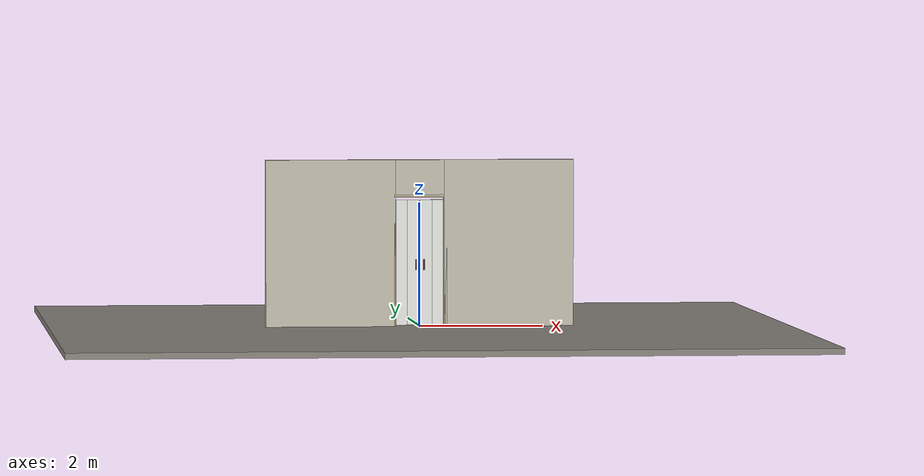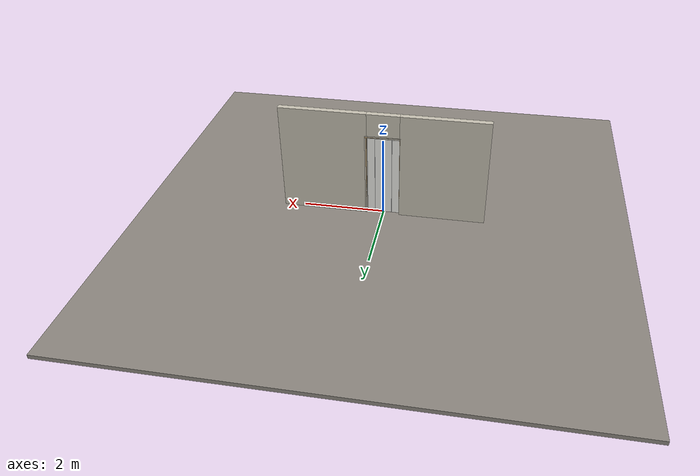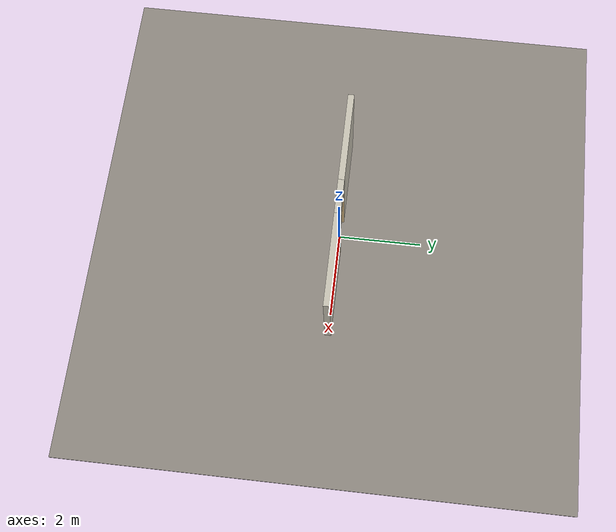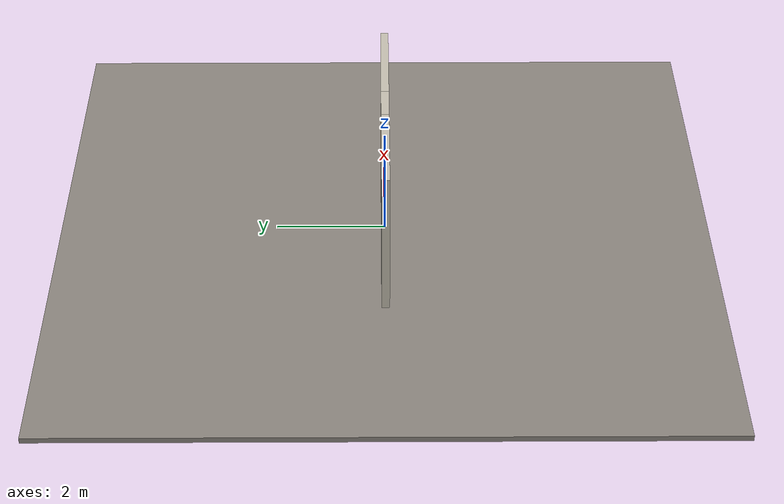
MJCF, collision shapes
<?xml version="1.0" ?>
<mujoco model="db0541_bifold_minimal">
  <compiler angle="radian" meshdir="../../hardware" texturedir="../../textures" autolimits="true" inertiafromgeom="false"/>
  <option timestep="0.002" integrator="implicitfast" cone="elliptic" impratio="10" noslip_iterations="3">
    <flag multiccd="enable"/>
  </option>
  <size memory="16M"/>
  <default>
    <geom condim="4" solref="0.005 1" solimp="0.95 0.99 0.001"/>
    <joint solreflimit="0.005 1" solimplimit="0.95 0.99 0.001"/>
    <tendon solreflimit="0.005 1"/>
    <equality solref="0.002 1"/>
  </default>
  <visual>
    <headlight ambient="0.4 0.4 0.4" diffuse="0.7 0.7 0.7" specular="0.2 0.2 0.2"/>
    <quality shadowsize="4096"/>
    <map znear="0.01" zfar="60"/>
  </visual>
  <asset>
    <mesh name="pull_1e5d69a91a" file="pull_1e5d69a91a.obj"/>
    <material name="mat_floor" rgba="0.55 0.53 0.5 1" specular="0.2" shininess="0.15" reflectance="0"/>
    <material name="mat_wall" rgba="0.78 0.76 0.7 1" specular="0.2" shininess="0.1" reflectance="0"/>
    <material name="mat_frame" rgba="0.82 0.7 0.5 1" specular="0.2" shininess="0.45" reflectance="0"/>
    <material name="mat_track" rgba="0.8 0.81 0.83 1" specular="0.8" shininess="0.6" reflectance="0.4"/>
    <material name="mat_hinge" rgba="0.65 0.66 0.68 1" specular="0.74" shininess="0.5" reflectance="0.36"/>
    <material name="mat_panel_0_0" rgba="0.93 0.93 0.91 1" specular="0.2" shininess="0.53" reflectance="0"/>
    <material name="mat_panel_0_0_louver" rgba="0.79 0.79 0.773 1" specular="0.2" shininess="0.4" reflectance="0"/>
    <material name="mat_panel_0_1" rgba="0.93 0.93 0.91 1" specular="0.2" shininess="0.53" reflectance="0"/>
    <material name="mat_panel_0_1_louver" rgba="0.79 0.79 0.773 1" specular="0.2" shininess="0.4" reflectance="0"/>
    <material name="mat_op_stainless" rgba="0.75 0.76 0.77 1" specular="0.8" shininess="0.65" reflectance="0.4"/>
    <material name="mat_panel_1_0" rgba="0.93 0.93 0.91 1" specular="0.2" shininess="0.53" reflectance="0"/>
    <material name="mat_panel_1_0_louver" rgba="0.79 0.79 0.773 1" specular="0.2" shininess="0.4" reflectance="0"/>
    <material name="mat_panel_1_1" rgba="0.93 0.93 0.91 1" specular="0.2" shininess="0.53" reflectance="0"/>
    <material name="mat_panel_1_1_louver" rgba="0.79 0.79 0.773 1" specular="0.2" shininess="0.4" reflectance="0"/>
    <texture name="skybox" type="skybox" builtin="gradient" rgb1="0.6 0.7 0.85" rgb2="0.9 0.92 0.95" width="256" height="256"/>
  </asset>
  <worldbody>
    <light name="sun" pos="1.5 -2.5 4" dir="-0.3 0.5 -0.8" directional="true" diffuse="0.8 0.8 0.8" specular="0.3 0.3 0.3" castshadow="true"/>
    <light name="fill" pos="-1.5 2.5 3" dir="0.3 -0.5 -0.7" directional="true" diffuse="0.35 0.35 0.4" castshadow="false"/>
    <camera name="robot_view" pos="0 -2.581563 1.766338" xyaxes="1 0 0 0 0.26963 0.962964" fovy="52"/>
    <camera name="far_view" pos="0 2.581563 1.766338" xyaxes="-1 0 0 0 -0.26963 0.962964" fovy="52"/>
    <camera name="iso" pos="1.961988 -2.168513 2.179388" xyaxes="0.741536 0.670913 0 -0.242917 0.268487 0.932151" fovy="46"/>
    <camera name="detail_handle" pos="0.114028 -0.8775 1.28" xyaxes="0.97561 0.219512 0 -0.070934 0.315262 0.94635" fovy="38"/>
    <geom name="floor" type="box" size="6 6 0.05" pos="0 0 -0.05" material="mat_floor" group="0" contype="1" conaffinity="1" friction="0.8 0.005 0.0001" density="2400"/>
    <geom name="wall_left" type="box" size="1.05275 0.0725 1.35" pos="-1.44725 0 1.35" material="mat_wall" group="0" contype="1" conaffinity="1" friction="0.6 0.005 0.0001" density="800"/>
    <geom name="wall_right" type="box" size="1.05275 0.0725 1.35" pos="1.44725 0 1.35" material="mat_wall" group="0" contype="1" conaffinity="1" friction="0.6 0.005 0.0001" density="800"/>
    <geom name="wall_header" type="box" size="0.3945 0.0725 0.3065" pos="0 0 2.3935" material="mat_wall" group="0" contype="1" conaffinity="1" friction="0.6 0.005 0.0001" density="800"/>
    <geom name="jamb_hinge" type="box" size="0.0095 0.0725 1.0435" pos="-0.404 0 1.0435" material="mat_frame" group="0" contype="1" conaffinity="1" friction="0.6 0.005 0.0001" density="400"/>
    <geom name="jamb_strike" type="box" size="0.0095 0.0725 1.0435" pos="0.404 0 1.0435" material="mat_frame" group="0" contype="1" conaffinity="1" friction="0.6 0.005 0.0001" density="400"/>
    <geom name="stud_strike" type="box" size="0.015 0.0725 1.0435" pos="0.4285 0 1.0435" material="mat_wall" group="0" contype="1" conaffinity="1" friction="0.6 0.005 0.0001" density="500"/>
    <geom name="jamb_head" type="box" size="0.4285 0.0725 0.0095" pos="0.015 0 2.0965" material="mat_frame" group="0" contype="1" conaffinity="1" friction="0.6 0.005 0.0001" density="400"/>
    <geom name="head_stud" type="box" size="0.4285 0.0725 0.015" pos="0.015 0 2.121" material="mat_wall" group="0" contype="1" conaffinity="1" friction="0.6 0.005 0.0001" density="500"/>
    <site name="approach_point" pos="0 -1.5 0" quat="1 0 0 0" size="0.05" rgba="0.2 0.9 0.2 0.5" group="4"/>
    <site name="goal_point" pos="0 1.5 0" quat="1 0 0 0" size="0.05" rgba="0.2 0.9 0.2 0.5" group="4"/>
    <site name="door_plane_center" pos="0 0 1.0435" quat="1 0 0 0" size="0.02" rgba="0.2 0.9 0.2 0.5" group="4"/>
    <body name="panel_0_0" pos="-0.3945 0 0">
      <inertial pos="0.098355 0 1.036" mass="2.969606" quat="-0.5 0.5 0.5 0.5" diaginertia="0.008258032 1.022101035 1.029752772"/>
      <joint name="panel_0_0_hinge" type="hinge" axis="0 0 -1" pos="0.035 0 0" limited="true" range="0 1.48353" damping="0.666256" frictionloss="1.269555" armature="0.02"/>
      <geom name="panel_0_0_slab" type="box" size="0.089645 0.0175 1.016" pos="0.098355 0 1.036" material="mat_panel_0_0" group="0" contype="1" conaffinity="1" friction="0.35 0.005 0.0001" density="1"/>
      <body name="panel_0_1" pos="0.19 0 0">
        <inertial pos="0.137375 -0.065745 1.001085" mass="3.316026" quat="0.702751 0.06783 -0.704529 0.071966" diaginertia="0.002303017 0.044861166 0.046161179"/>
        <joint name="panel_0_1_hinge" type="hinge" axis="0 0 -1" pos="0 0.0175 0" limited="true" range="-3.141593 0" damping="0.2" frictionloss="0.1" armature="0.005"/>
        <geom name="panel_0_1_slab" type="box" size="0.098264 0.0175 1.016" pos="0.100264 0 1.036" material="mat_panel_0_1" group="0" contype="1" conaffinity="1" friction="0.35 0.005 0.0001" density="1"/>
        <geom name="panel_0_1_pull_n" type="mesh" mesh="pull_1e5d69a91a" pos="0.138528 -0.0175 1" quat="0.707107 0.707107 0 0" material="mat_op_stainless" group="1" contype="0" conaffinity="0" density="3000"/>
        <geom name="panel_0_1_pull_col_n" type="capsule" size="0.0095 0.08" pos="0.138528 -0.0775 1" material="mat_op_stainless" group="3" contype="1" conaffinity="1" rgba="0.8 0.3 0.3 0.25" friction="0.7 0.01 0.0001" density="3000"/>
        <site name="panel_0_1_pull_grip_n" pos="0.138528 -0.0775 1" quat="1 0 0 0" size="0.012" rgba="0.2 0.9 0.2 0.5" group="4"/>
      </body>
    </body>
    <body name="panel_1_0" pos="0.3945 0 0">
      <inertial pos="-0.098355 0 1.036" mass="2.969606" quat="-0.5 0.5 0.5 0.5" diaginertia="0.008258032 1.022101035 1.029752772"/>
      <joint name="panel_1_0_hinge" type="hinge" axis="0 0 1" pos="-0.035 0 0" limited="true" range="0 1.48353" damping="0.666256" frictionloss="1.269555" armature="0.02"/>
      <geom name="panel_1_0_slab" type="box" size="0.089645 0.0175 1.016" pos="-0.098355 0 1.036" material="mat_panel_1_0" group="0" contype="1" conaffinity="1" friction="0.35 0.005 0.0001" density="1"/>
      <body name="panel_1_1" pos="-0.19 0 0">
        <inertial pos="-0.137375 -0.065745 1.001085" mass="3.316026" quat="0.704529 -0.071966 -0.702751 -0.06783" diaginertia="0.002303017 0.044861166 0.046161179"/>
        <joint name="panel_1_1_hinge" type="hinge" axis="0 0 1" pos="0 0.0175 0" limited="true" range="-3.141593 0" damping="0.2" frictionloss="0.1" armature="0.005"/>
        <geom name="panel_1_1_slab" type="box" size="0.098264 0.0175 1.016" pos="-0.100264 0 1.036" material="mat_panel_1_1" group="0" contype="1" conaffinity="1" friction="0.35 0.005 0.0001" density="1"/>
        <geom name="panel_1_1_pull_n" type="mesh" mesh="pull_1e5d69a91a" pos="-0.138528 -0.0175 1" quat="0 0 -0.707107 0.707107" material="mat_op_stainless" group="1" contype="0" conaffinity="0" density="3000"/>
        <geom name="panel_1_1_pull_col_n" type="capsule" size="0.0095 0.08" pos="-0.138528 -0.0775 1" material="mat_op_stainless" group="3" contype="1" conaffinity="1" rgba="0.8 0.3 0.3 0.25" friction="0.7 0.01 0.0001" density="3000"/>
        <site name="panel_1_1_pull_grip_n" pos="-0.138528 -0.0775 1" quat="1 0 0 0" size="0.012" rgba="0.2 0.9 0.2 0.5" group="4"/>
      </body>
    </body>
  </worldbody>
  <equality>
    <joint name="panel_0_1_couple" joint1="panel_0_1_hinge" joint2="panel_0_0_hinge" polycoef="0 -2 0 0 0" active="true"/>
    <joint name="panel_1_1_couple" joint1="panel_1_1_hinge" joint2="panel_1_0_hinge" polycoef="0 -2 0 0 0" active="true"/>
  </equality>
  <sensor>
    <jointpos name="panel_0_0_hinge_pos" joint="panel_0_0_hinge"/>
    <jointvel name="panel_0_0_hinge_vel" joint="panel_0_0_hinge"/>
    <jointpos name="panel_0_1_hinge_pos" joint="panel_0_1_hinge"/>
    <jointvel name="panel_0_1_hinge_vel" joint="panel_0_1_hinge"/>
    <jointpos name="panel_1_0_hinge_pos" joint="panel_1_0_hinge"/>
    <jointvel name="panel_1_0_hinge_vel" joint="panel_1_0_hinge"/>
    <jointpos name="panel_1_1_hinge_pos" joint="panel_1_1_hinge"/>
    <jointvel name="panel_1_1_hinge_vel" joint="panel_1_1_hinge"/>
  </sensor>
</mujoco>
